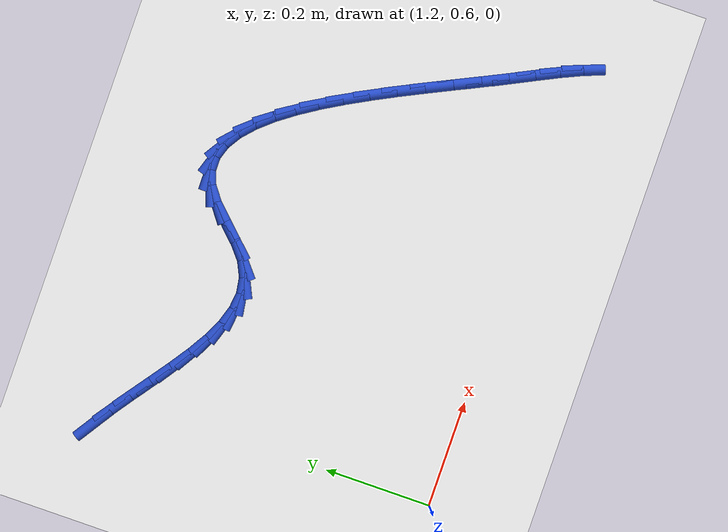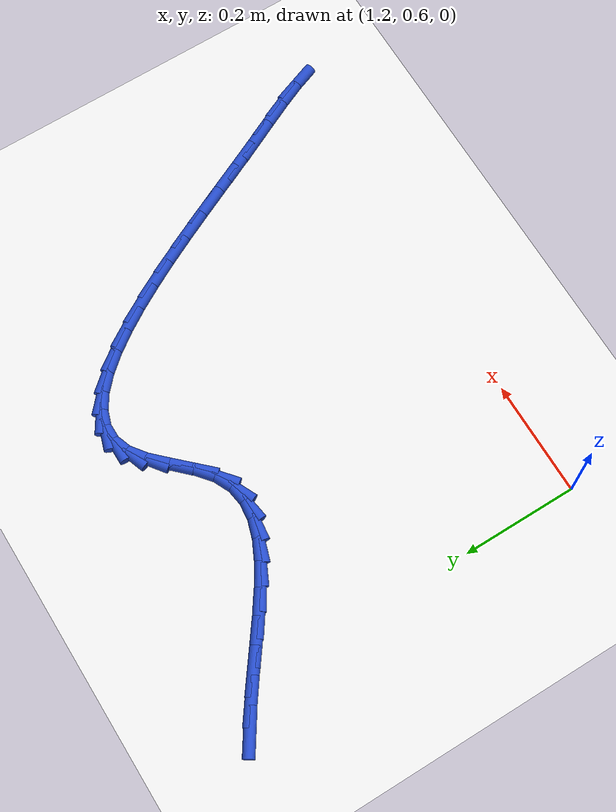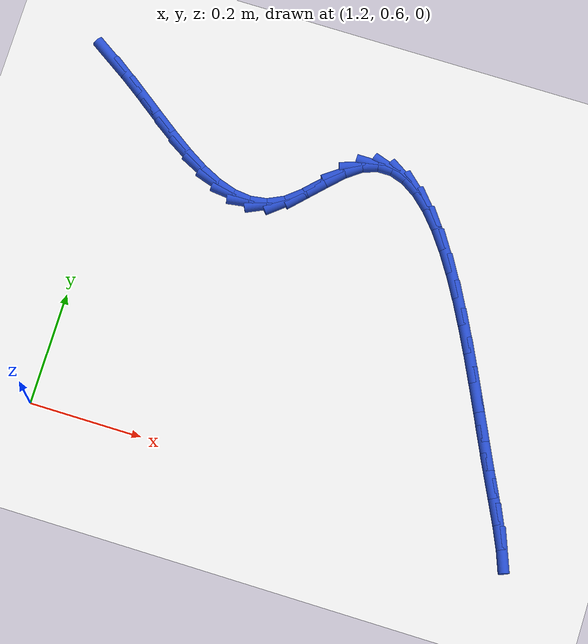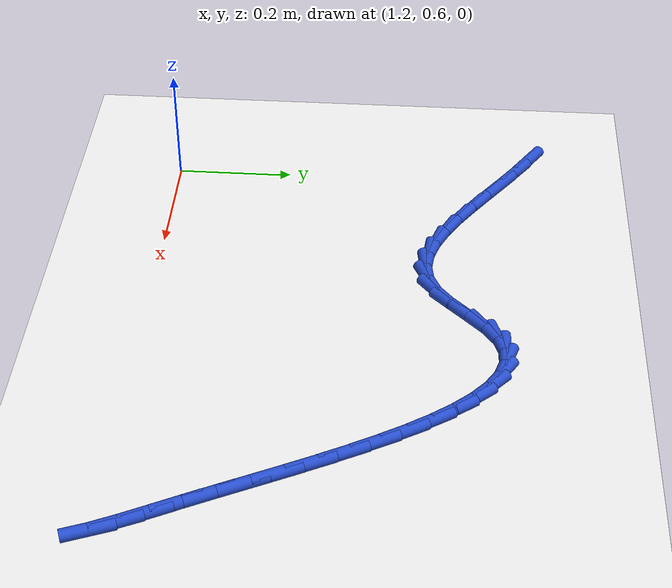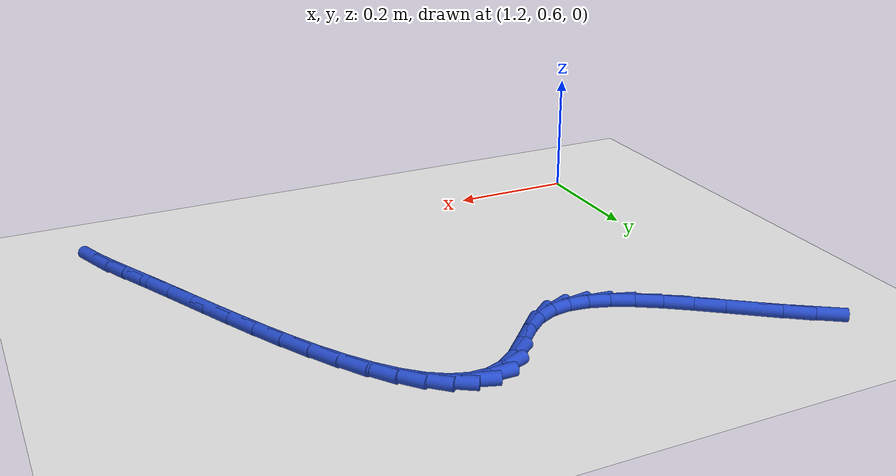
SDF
<sdf version="1.6">
 <world name="default">
  <model name="ground_plane">
   <static>1</static>
   <link name="link">
    <collision name="collision">
     <geometry><plane><normal>0 0 1</normal><size>100 100</size></plane></geometry>
     <surface><friction><ode><mu>100</mu><mu2>50</mu2></ode></friction></surface>
    </collision>
    <visual name="visual">
     <cast_shadows>0</cast_shadows>
     <geometry><plane><normal>0 0 1</normal><size>100 100</size></plane></geometry>
     <material>
      <script><uri>file://media/materials/scripts/gazebo.material</uri><name>Gazebo/WhiteGlow</name></script>
     </material>
    </visual>
   </link>
  </model>
  <model name="line">
   <link name="link_49">
    <pose>1.1416171008792753 1.2310376644582781 0.01 0 1.57 -0.5824710841185692</pose>
    <collision name="collision">
     <geometry><cylinder><radius>0.01</radius><length>0.08</length></cylinder></geometry>
    </collision>
    <visual name="visual">
     <material>
      <script><name>Gazebo/Blue</name><uri>file://media/materials/scripts/gazebo.material</uri></script>
     </material>
     <geometry><cylinder><radius>0.01</radius><length>0.08</length></cylinder></geometry>
    </visual>
   </link>
   <link name="link_50">
    <pose>1.1796315790729062 1.205997300746008 0.01 0 1.57 -0.6195185014129785</pose>
    <collision name="collision">
     <geometry><cylinder><radius>0.01</radius><length>0.08</length></cylinder></geometry>
    </collision>
    <visual name="visual">
     <material>
      <script><name>Gazebo/Blue</name><uri>file://media/materials/scripts/gazebo.material</uri></script>
     </material>
     <geometry><cylinder><radius>0.01</radius><length>0.08</length></cylinder></geometry>
    </visual>
   </link>
   <link name="link_51">
    <pose>1.2168541625977678 1.179450810994337 0.01 0 1.57 -0.63541704887677</pose>
    <collision name="collision">
     <geometry><cylinder><radius>0.01</radius><length>0.08</length></cylinder></geometry>
    </collision>
    <visual name="visual">
     <material>
      <script><name>Gazebo/Blue</name><uri>file://media/materials/scripts/gazebo.material</uri></script>
     </material>
     <geometry><cylinder><radius>0.01</radius><length>0.08</length></cylinder></geometry>
    </visual>
   </link>
   <link name="link_52">
    <pose>1.2532680923837614 1.1525975584813082 0.01 0 1.57 -0.6302300221924924</pose>
    <collision name="collision">
     <geometry><cylinder><radius>0.01</radius><length>0.08</length></cylinder></geometry>
    </collision>
    <visual name="visual">
     <material>
      <script><name>Gazebo/Blue</name><uri>file://media/materials/scripts/gazebo.material</uri></script>
     </material>
     <geometry><cylinder><radius>0.01</radius><length>0.08</length></cylinder></geometry>
    </visual>
   </link>
   <link name="link_53">
    <pose>1.288856609360786 1.1266369064849646 0.01 0 1.57 -0.6019076443133381</pose>
    <collision name="collision">
     <geometry><cylinder><radius>0.01</radius><length>0.08</length></cylinder></geometry>
    </collision>
    <visual name="visual">
     <material>
      <script><name>Gazebo/Blue</name><uri>file://media/materials/scripts/gazebo.material</uri></script>
     </material>
     <geometry><cylinder><radius>0.01</radius><length>0.08</length></cylinder></geometry>
    </visual>
   </link>
   <link name="link_54">
    <pose>1.3236029544587427 1.1027682182833496 0.01 0 1.57 -0.5457167110879396</pose>
    <collision name="collision">
     <geometry><cylinder><radius>0.01</radius><length>0.08</length></cylinder></geometry>
    </collision>
    <visual name="visual">
     <material>
      <script><name>Gazebo/Blue</name><uri>file://media/materials/scripts/gazebo.material</uri></script>
     </material>
     <geometry><cylinder><radius>0.01</radius><length>0.08</length></cylinder></geometry>
    </visual>
   </link>
   <link name="link_55">
    <pose>1.3574903686075324 1.082190857154506 0.01 0 1.57 -0.45343749786819115</pose>
    <collision name="collision">
     <geometry><cylinder><radius>0.01</radius><length>0.08</length></cylinder></geometry>
    </collision>
    <visual name="visual">
     <material>
      <script><name>Gazebo/Blue</name><uri>file://media/materials/scripts/gazebo.material</uri></script>
     </material>
     <geometry><cylinder><radius>0.01</radius><length>0.08</length></cylinder></geometry>
    </visual>
   </link>
   <link name="link_56">
    <pose>1.3905020927370542 1.0661041863764766 0.01 0 1.57 -0.3130445924595224</pose>
    <collision name="collision">
     <geometry><cylinder><radius>0.01</radius><length>0.08</length></cylinder></geometry>
    </collision>
    <visual name="visual">
     <material>
      <script><name>Gazebo/Blue</name><uri>file://media/materials/scripts/gazebo.material</uri></script>
     </material>
     <geometry><cylinder><radius>0.01</radius><length>0.08</length></cylinder></geometry>
    </visual>
   </link>
   <link name="link_57">
    <pose>1.42262136777721 1.055707569227306 0.01 0 1.57 -0.11190454134681728</pose>
    <collision name="collision">
     <geometry><cylinder><radius>0.01</radius><length>0.08</length></cylinder></geometry>
    </collision>
    <visual name="visual">
     <material>
      <script><name>Gazebo/Blue</name><uri>file://media/materials/scripts/gazebo.material</uri></script>
     </material>
     <geometry><cylinder><radius>0.01</radius><length>0.08</length></cylinder></geometry>
    </visual>
   </link>
   <link name="link_58">
    <pose>1.4538314346578982 1.0522003689850354 0.01 0 1.57 0.15014804553716435</pose>
    <collision name="collision">
     <geometry><cylinder><radius>0.01</radius><length>0.08</length></cylinder></geometry>
    </collision>
    <visual name="visual">
     <material>
      <script><name>Gazebo/Blue</name><uri>file://media/materials/scripts/gazebo.material</uri></script>
     </material>
     <geometry><cylinder><radius>0.01</radius><length>0.08</length></cylinder></geometry>
    </visual>
   </link>
   <link name="link_59">
    <pose>1.4841155343090215 1.056781948927709 0.01 0 1.57 0.44157163698915336</pose>
    <collision name="collision">
     <geometry><cylinder><radius>0.01</radius><length>0.08</length></cylinder></geometry>
    </collision>
    <visual name="visual">
     <material>
      <script><name>Gazebo/Blue</name><uri>file://media/materials/scripts/gazebo.material</uri></script>
     </material>
     <geometry><cylinder><radius>0.01</radius><length>0.08</length></cylinder></geometry>
    </visual>
   </link>
   <link name="link_60">
    <pose>1.5134569076604787 1.0706516723333699 0.01 0 1.57 0.6926914523672263</pose>
    <collision name="collision">
     <geometry><cylinder><radius>0.01</radius><length>0.08</length></cylinder></geometry>
    </collision>
    <visual name="visual">
     <material>
      <script><name>Gazebo/Blue</name><uri>file://media/materials/scripts/gazebo.material</uri></script>
     </material>
     <geometry><cylinder><radius>0.01</radius><length>0.08</length></cylinder></geometry>
    </visual>
   </link>
   <link name="link_61">
    <pose>1.5418664681859418 1.0942279428747947 0.01 0 1.57 0.8051517234412948</pose>
    <collision name="collision">
     <geometry><cylinder><radius>0.01</radius><length>0.08</length></cylinder></geometry>
    </collision>
    <visual name="visual">
     <material>
      <script><name>Gazebo/Blue</name><uri>file://media/materials/scripts/gazebo.material</uri></script>
     </material>
     <geometry><cylinder><radius>0.01</radius><length>0.08</length></cylinder></geometry>
    </visual>
   </link>
   <link name="link_62">
    <pose>1.569529573038283 1.123006108795517 0.01 0 1.57 0.7925659561017157</pose>
    <collision name="collision">
     <geometry><cylinder><radius>0.01</radius><length>0.08</length></cylinder></geometry>
    </collision>
    <visual name="visual">
     <material>
      <script><name>Gazebo/Blue</name><uri>file://media/materials/scripts/gazebo.material</uri></script>
     </material>
     <geometry><cylinder><radius>0.01</radius><length>0.08</length></cylinder></geometry>
    </visual>
   </link>
   <link name="link_63">
    <pose>1.596699375072815 1.1505682245900453 0.01 0 1.57 0.6402516160420375</pose>
    <collision name="collision">
     <geometry><cylinder><radius>0.01</radius><length>0.08</length></cylinder></geometry>
    </collision>
    <visual name="visual">
     <material>
      <script><name>Gazebo/Blue</name><uri>file://media/materials/scripts/gazebo.material</uri></script>
     </material>
     <geometry><cylinder><radius>0.01</radius><length>0.08</length></cylinder></geometry>
    </visual>
   </link>
   <link name="link_64">
    <pose>1.6236238781954746 1.170625229156104 0.01 0 1.57 0.34636034771015345</pose>
    <collision name="collision">
     <geometry><cylinder><radius>0.01</radius><length>0.08</length></cylinder></geometry>
    </collision>
    <visual name="visual">
     <material>
      <script><name>Gazebo/Blue</name><uri>file://media/materials/scripts/gazebo.material</uri></script>
     </material>
     <geometry><cylinder><radius>0.01</radius><length>0.08</length></cylinder></geometry>
    </visual>
   </link>
   <link name="link_65">
    <pose>1.6504154880556818 1.1802945710826445 0.01 0 1.57 0.0003223808804786411</pose>
    <collision name="collision">
     <geometry><cylinder><radius>0.01</radius><length>0.08</length></cylinder></geometry>
    </collision>
    <visual name="visual">
     <material>
      <script><name>Gazebo/Blue</name><uri>file://media/materials/scripts/gazebo.material</uri></script>
     </material>
     <geometry><cylinder><radius>0.01</radius><length>0.08</length></cylinder></geometry>
    </visual>
   </link>
   <link name="link_66">
    <pose>1.6770429336290438 1.1803031552622907 0.01 0 1.57 -0.319812314716839</pose>
    <collision name="collision">
     <geometry><cylinder><radius>0.01</radius><length>0.08</length></cylinder></geometry>
    </collision>
    <visual name="visual">
     <material>
      <script><name>Gazebo/Blue</name><uri>file://media/materials/scripts/gazebo.material</uri></script>
     </material>
     <geometry><cylinder><radius>0.01</radius><length>0.08</length></cylinder></geometry>
    </visual>
   </link>
   <link name="link_67">
    <pose>1.7034680265985784 1.1715516633370364 0.01 0 1.57 -0.5653141672963753</pose>
    <collision name="collision">
     <geometry><cylinder><radius>0.01</radius><length>0.08</length></cylinder></geometry>
    </collision>
    <visual name="visual">
     <material>
      <script><name>Gazebo/Blue</name><uri>file://media/materials/scripts/gazebo.material</uri></script>
     </material>
     <geometry><cylinder><radius>0.01</radius><length>0.08</length></cylinder></geometry>
    </visual>
   </link>
   <link name="link_68">
    <pose>1.7296525786473043 1.1549407769488762 0.01 0 1.57 -0.738213329936311</pose>
    <collision name="collision">
     <geometry><cylinder><radius>0.01</radius><length>0.08</length></cylinder></geometry>
    </collision>
    <visual name="visual">
     <material>
      <script><name>Gazebo/Blue</name><uri>file://media/materials/scripts/gazebo.material</uri></script>
     </material>
     <geometry><cylinder><radius>0.01</radius><length>0.08</length></cylinder></geometry>
    </visual>
   </link>
   <link name="link_69">
    <pose>1.7555584014582404 1.1313711777398059 0.01 0 1.57 -0.8584115421069373</pose>
    <collision name="collision">
     <geometry><cylinder><radius>0.01</radius><length>0.08</length></cylinder></geometry>
    </collision>
    <visual name="visual">
     <material>
      <script><name>Gazebo/Blue</name><uri>file://media/materials/scripts/gazebo.material</uri></script>
     </material>
     <geometry><cylinder><radius>0.01</radius><length>0.08</length></cylinder></geometry>
    </visual>
   </link>
   <link name="link_70">
    <pose>1.7811473067144044 1.1017435473518191 0.01 0 1.57 -0.9432113997576469</pose>
    <collision name="collision">
     <geometry><cylinder><radius>0.01</radius><length>0.08</length></cylinder></geometry>
    </collision>
    <visual name="visual">
     <material>
      <script><name>Gazebo/Blue</name><uri>file://media/materials/scripts/gazebo.material</uri></script>
     </material>
     <geometry><cylinder><radius>0.01</radius><length>0.08</length></cylinder></geometry>
    </visual>
   </link>
   <link name="link_71">
    <pose>1.8063811060988149 1.0669585674269109 0.01 0 1.57 -1.0041433141635454</pose>
    <collision name="collision">
     <geometry><cylinder><radius>0.01</radius><length>0.08</length></cylinder></geometry>
    </collision>
    <visual name="visual">
     <material>
      <script><name>Gazebo/Blue</name><uri>file://media/materials/scripts/gazebo.material</uri></script>
     </material>
     <geometry><cylinder><radius>0.01</radius><length>0.08</length></cylinder></geometry>
    </visual>
   </link>
   <link name="link_72">
    <pose>1.8312216112944915 1.0279169196070757 0.01 0 1.57 -1.0484236529388244</pose>
    <collision name="collision">
     <geometry><cylinder><radius>0.01</radius><length>0.08</length></cylinder></geometry>
    </collision>
    <visual name="visual">
     <material>
      <script><name>Gazebo/Blue</name><uri>file://media/materials/scripts/gazebo.material</uri></script>
     </material>
     <geometry><cylinder><radius>0.01</radius><length>0.08</length></cylinder></geometry>
    </visual>
   </link>
   <link name="link_73">
    <pose>1.8556306339844517 0.9855192855343082 0.01 0 1.57 -1.0805303510151576</pose>
    <collision name="collision">
     <geometry><cylinder><radius>0.01</radius><length>0.08</length></cylinder></geometry>
    </collision>
    <visual name="visual">
     <material>
      <script><name>Gazebo/Blue</name><uri>file://media/materials/scripts/gazebo.material</uri></script>
     </material>
     <geometry><cylinder><radius>0.01</radius><length>0.08</length></cylinder></geometry>
    </visual>
   </link>
   <link name="link_74">
    <pose>1.8795699858517145 0.9406663468506029 0.01 0 1.57 -1.1032309996872613</pose>
    <collision name="collision">
     <geometry><cylinder><radius>0.01</radius><length>0.08</length></cylinder></geometry>
    </collision>
    <visual name="visual">
     <material>
      <script><name>Gazebo/Blue</name><uri>file://media/materials/scripts/gazebo.material</uri></script>
     </material>
     <geometry><cylinder><radius>0.01</radius><length>0.08</length></cylinder></geometry>
    </visual>
   </link>
   <link name="link_75">
    <pose>1.903001478579298 0.8942587851979545 0.01 0 1.57 -1.1181783493141353</pose>
    <collision name="collision">
     <geometry><cylinder><radius>0.01</radius><length>0.08</length></cylinder></geometry>
    </collision>
    <visual name="visual">
     <material>
      <script><name>Gazebo/Blue</name><uri>file://media/materials/scripts/gazebo.material</uri></script>
     </material>
     <geometry><cylinder><radius>0.01</radius><length>0.08</length></cylinder></geometry>
    </visual>
   </link>
   <link name="link_76">
    <pose>1.925886923850221 0.847197282218358 0.01 0 1.57 -1.126229724855709</pose>
    <collision name="collision">
     <geometry><cylinder><radius>0.01</radius><length>0.08</length></cylinder></geometry>
    </collision>
    <visual name="visual">
     <material>
      <script><name>Gazebo/Blue</name><uri>file://media/materials/scripts/gazebo.material</uri></script>
     </material>
     <geometry><cylinder><radius>0.01</radius><length>0.08</length></cylinder></geometry>
    </visual>
   </link>
   <link name="link_77">
    <pose>1.9481881333475022 0.8003825195538076 0.01 0 1.57 -1.1275838786068733</pose>
    <collision name="collision">
     <geometry><cylinder><radius>0.01</radius><length>0.08</length></cylinder></geometry>
    </collision>
    <visual name="visual">
     <material>
      <script><name>Gazebo/Blue</name><uri>file://media/materials/scripts/gazebo.material</uri></script>
     </material>
     <geometry><cylinder><radius>0.01</radius><length>0.08</length></cylinder></geometry>
    </visual>
   </link>
   <link name="link_78">
    <pose>1.969866918754159 0.7547151788462978 0.01 0 1.57 -1.121769330073949</pose>
    <collision name="collision">
     <geometry><cylinder><radius>0.01</radius><length>0.08</length></cylinder></geometry>
    </collision>
    <visual name="visual">
     <material>
      <script><name>Gazebo/Blue</name><uri>file://media/materials/scripts/gazebo.material</uri></script>
     </material>
     <geometry><cylinder><radius>0.01</radius><length>0.08</length></cylinder></geometry>
    </visual>
   </link>
   <link name="link_79">
    <pose>1.9908850917159027 0.7110959416665071 0.01 0 1.57 -1.1123186171506994</pose>
    <collision name="collision">
     <geometry><cylinder><radius>0.01</radius><length>0.08</length></cylinder></geometry>
    </collision>
    <visual name="visual">
     <material>
      <script><name>Gazebo/Blue</name><uri>file://media/materials/scripts/gazebo.material</uri></script>
     </material>
     <geometry><cylinder><radius>0.01</radius><length>0.08</length></cylinder></geometry>
    </visual>
   </link>
   <link name="link_80">
    <pose>2.011077731548608 0.6701832342266626 0.01 0 1.57 -1.118504741108917</pose>
    <collision name="collision">
     <geometry><cylinder><radius>0.01</radius><length>0.08</length></cylinder></geometry>
    </collision>
    <visual name="visual">
     <material>
      <script><name>Gazebo/Blue</name><uri>file://media/materials/scripts/gazebo.material</uri></script>
     </material>
     <geometry><cylinder><radius>0.01</radius><length>0.08</length></cylinder></geometry>
    </visual>
   </link>
   <link name="link_81">
    <pose>2.0297830705706748 0.6316857341813379 0.01 0 1.57 -1.1488132450318516</pose>
    <collision name="collision">
     <geometry><cylinder><radius>0.01</radius><length>0.08</length></cylinder></geometry>
    </collision>
    <visual name="visual">
     <material>
      <script><name>Gazebo/Blue</name><uri>file://media/materials/scripts/gazebo.material</uri></script>
     </material>
     <geometry><cylinder><radius>0.01</radius><length>0.08</length></cylinder></geometry>
    </visual>
   </link>
   <link name="link_82">
    <pose>2.046217599997772 0.5950794048136564 0.01 0 1.57 -1.2079142531775957</pose>
    <collision name="collision">
     <geometry><cylinder><radius>0.01</radius><length>0.08</length></cylinder></geometry>
    </collision>
    <visual name="visual">
     <material>
      <script><name>Gazebo/Blue</name><uri>file://media/materials/scripts/gazebo.material</uri></script>
     </material>
     <geometry><cylinder><radius>0.01</radius><length>0.08</length></cylinder></geometry>
    </visual>
   </link>
  </model>
 </world>
</sdf>
